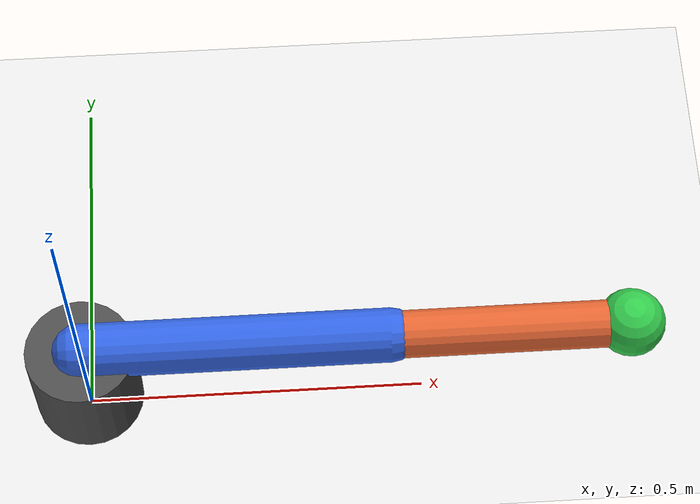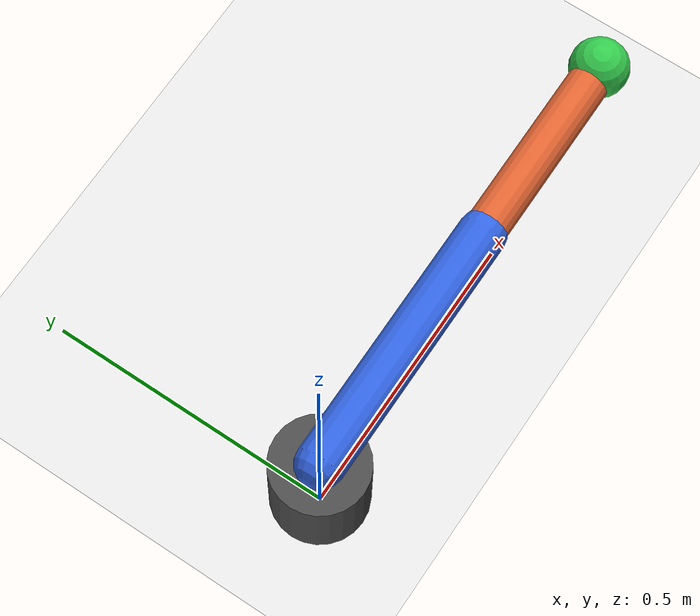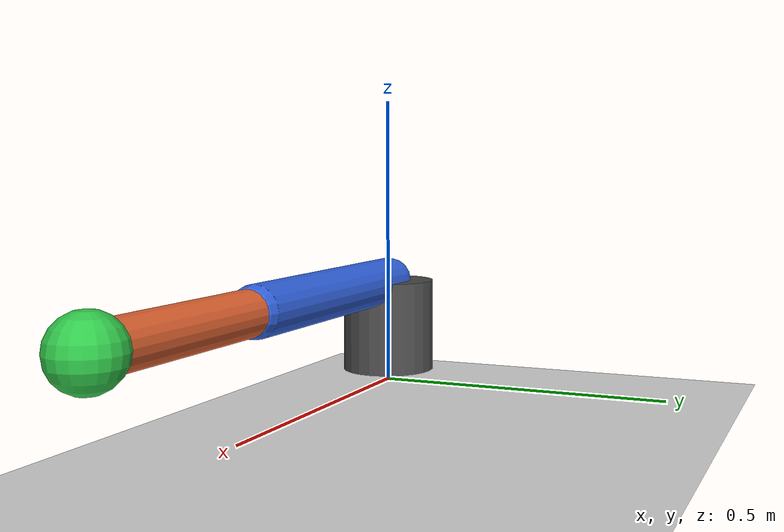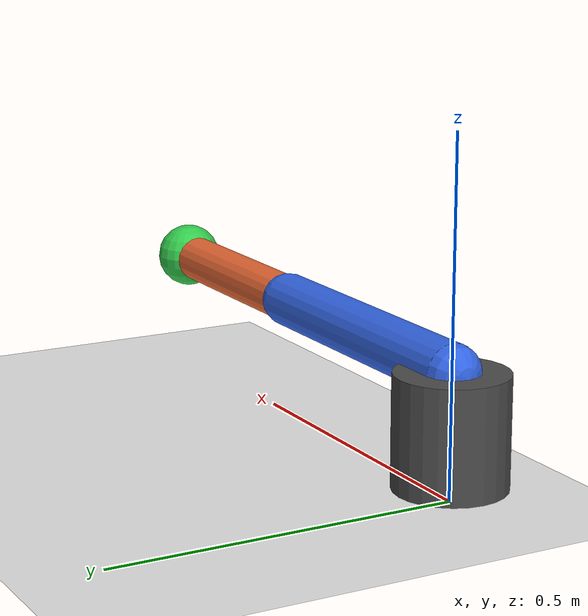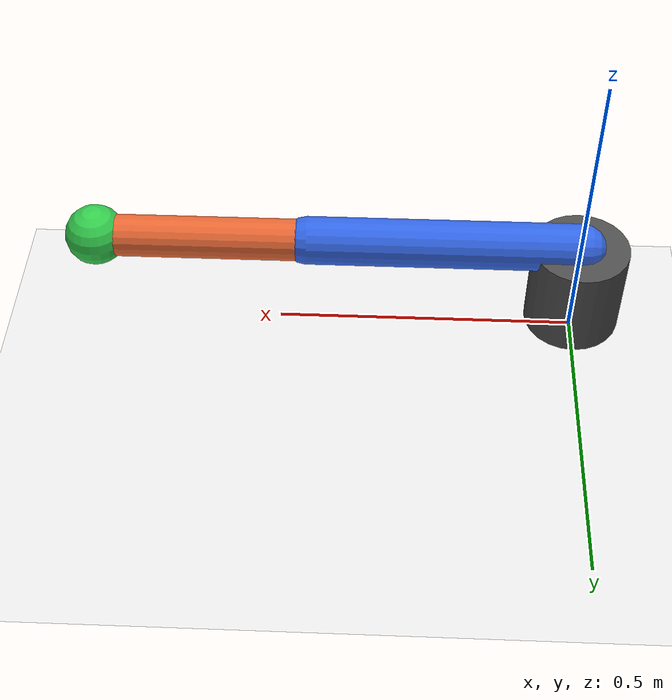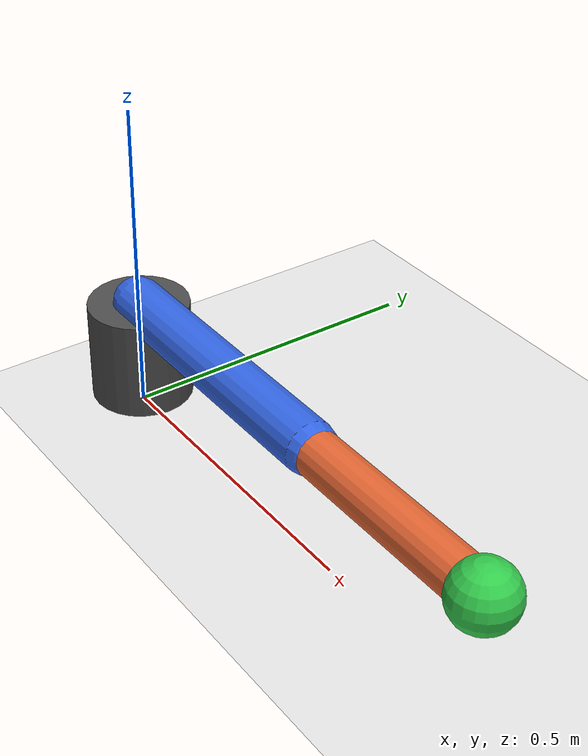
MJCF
<mujoco model="arm2dof">
  <compiler angle="degree"/>
  <option timestep="0.02" gravity="0 0 -9.81"/>

  <visual>
    <headlight ambient="0.6 0.6 0.6" diffuse="0.8 0.8 0.8" specular="0.2 0.2 0.2"/>
  </visual>

  <asset>
    <texture type="skybox" builtin="gradient" rgb1="0.95 0.95 0.95" rgb2="0.7 0.8 0.9" width="256" height="256"/>
    <material name="ground" rgba="0.9 0.9 0.9 1"/>
    <material name="link1_mat" rgba="0.2 0.4 0.9 1"/>
    <material name="link2_mat" rgba="0.9 0.4 0.2 1"/>
    <material name="ee_mat" rgba="0.2 0.8 0.3 1"/>
  </asset>

  <worldbody>
    <light pos="0 0 3" dir="0 0 -1"/>
    <geom name="floor" type="plane" size="3 3 0.1" material="ground"/>

    <camera name="front" pos="1.6 0 0.9" xyaxes="0 1 0 -0.35 0 1"/>
    <camera name="top" pos="0 0 2.2" xyaxes="1 0 0 0 1 0"/>

    <body name="base" pos="0 0 0.1">
      <geom type="cylinder" size="0.08 0.08" rgba="0.3 0.3 0.3 1"/>

      <body name="link1_body" pos="0 0 0.08">
        <joint name="joint1" type="hinge" axis="0 0 1" range="-180 180" damping="1"/>
        <geom name="link1" type="capsule" fromto="0 0 0 0.45 0 0" size="0.04" material="link1_mat"/>

        <body name="link2_body" pos="0.45 0 0">
          <joint name="joint2" type="hinge" axis="0 0 1" range="-180 180" damping="1"/>
          <geom name="link2" type="capsule" fromto="0 0 0 0.35 0 0" size="0.035" material="link2_mat"/>

          <body name="ee" pos="0.35 0 0">
            <geom name="ee_geom" type="sphere" size="0.05" material="ee_mat"/>
            <site name="ee_site" pos="0 0 0" size="0.02" rgba="1 1 0 1"/>

            <!-- Caméra embarquée sur l’organe terminal -->
            <camera name="wrist_cam" pos="0.08 0 0.02" xyaxes="1 0 0 0 0 -1"/>
          </body>
        </body>
      </body>
    </body>
  </worldbody>

  <actuator>
    <motor name="motor1" joint="joint1" gear="25" ctrlrange="-1 1" ctrllimited="true"/>
    <motor name="motor2" joint="joint2" gear="25" ctrlrange="-1 1" ctrllimited="true"/>
  </actuator>
</mujoco>
